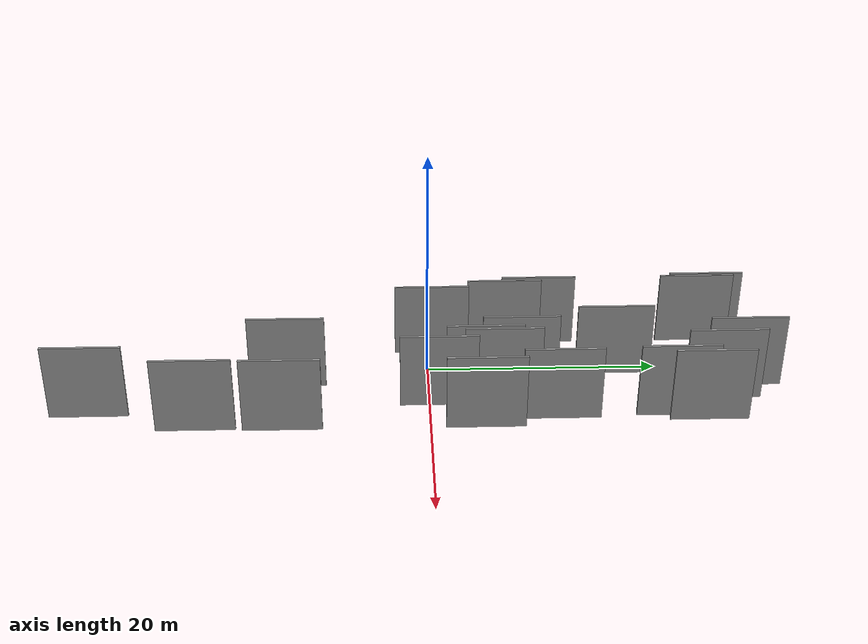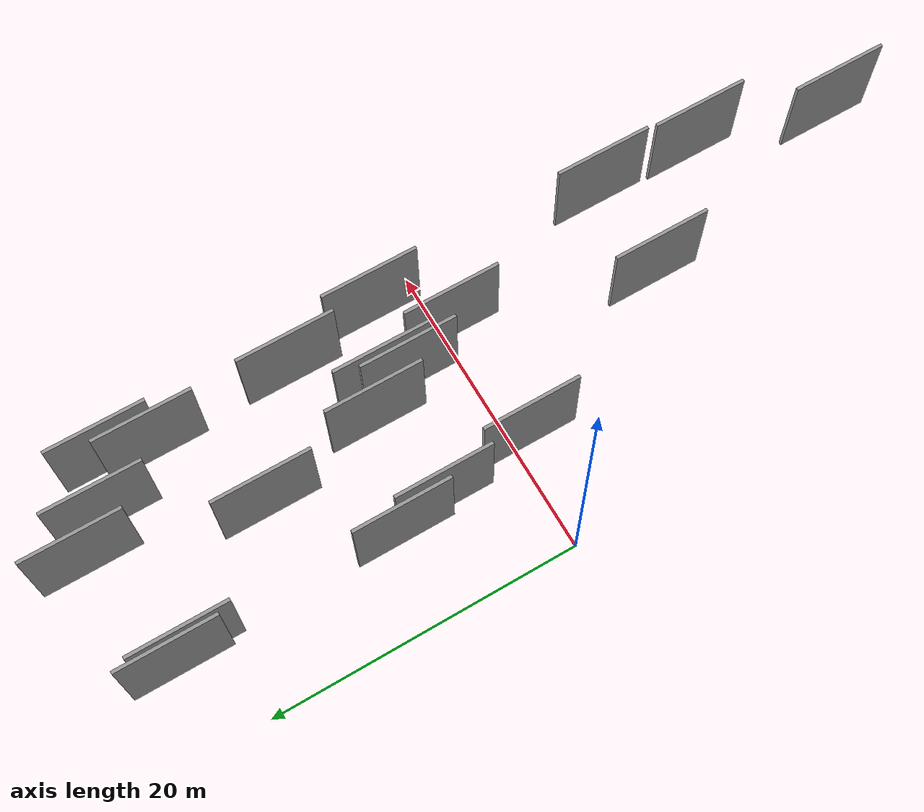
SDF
<sdf version="1.6">
 <world name="default">
  <scene>
   <sky><clouds><speed>12</speed></clouds></sky>
   <ambient>0.4 0.4 0.4 1</ambient>
   <background>0.7 0.7 0.7 1</background>
   <shadows>1</shadows>
  </scene>
  <gravity>0 0 -9.8066</gravity>
  <magnetic_field>6e-06 2.3e-05 -4.2e-05</magnetic_field>
  <physics default="0" name="default_physics" type="ode">
   <ode>
    <solver>
     <type>quick</type>
     <iters>10</iters>
     <sor>1.0</sor>
     <use_dynamic_moi_rescaling>0</use_dynamic_moi_rescaling>
    </solver>
    <constraints>
     <cfm>0</cfm>
     <erp>0.2</erp>
     <contact_max_correcting_vel>100</contact_max_correcting_vel>
     <contact_surface_layer>0.001</contact_surface_layer>
    </constraints>
   </ode>
   <max_step_size>0.004</max_step_size>
   <real_time_factor>1</real_time_factor>
   <real_time_update_rate>250</real_time_update_rate>
  </physics>
  <light name="sun" type="directional">
   <pose>0 0 10 0 0 0</pose>
   <diffuse>0.8 0.8 0.8 1</diffuse>
   <specular>0.2 0.2 0.2 1</specular>
   <attenuation>
    <range>1000</range>
    <constant>0.9</constant>
    <linear>0.01</linear>
    <quadratic>0.001</quadratic>
   </attenuation>
   <direction>-0.5 0.1 -0.9</direction>
  </light>
  <model name="grey_wall_1">
   <static>1</static>
   <pose>15.4635 9.6667 5.0 0.000000 0.000000 1.570796</pose>
   <link name="link">
    <pose>0 0 3.00 0 0 0</pose>
    <collision name="collision"><geometry><box><size>6.00 0.2 6.00</size></box></geometry></collision>
    <visual name="visual">
     <cast_shadows>0</cast_shadows>
     <geometry><box><size>6.00 0.2 6.00</size></box></geometry>
     <material>
      <script>
       <uri>model://grey_wall/materials/scripts</uri>
       <uri>model://grey_wall/materials/textures</uri>
       <name>vrc/grey_wall</name>
      </script>
     </material>
    </visual>
   </link>
  </model>
  <model name="grey_wall_2">
   <static>1</static>
   <pose>5.3082 0.1436 5.0 0.000000 0.000000 1.570796</pose>
   <link name="link">
    <pose>0 0 3.00 0 0 0</pose>
    <collision name="collision"><geometry><box><size>6.00 0.2 6.00</size></box></geometry></collision>
    <visual name="visual">
     <cast_shadows>0</cast_shadows>
     <geometry><box><size>6.00 0.2 6.00</size></box></geometry>
     <material>
      <script>
       <uri>model://grey_wall/materials/scripts</uri>
       <uri>model://grey_wall/materials/textures</uri>
       <name>vrc/grey_wall</name>
      </script>
     </material>
    </visual>
   </link>
  </model>
  <model name="grey_wall_3">
   <static>1</static>
   <pose>10.4455 6.9441 5.0 0.000000 0.000000 1.570796</pose>
   <link name="link">
    <pose>0 0 3.00 0 0 0</pose>
    <collision name="collision"><geometry><box><size>6.00 0.2 6.00</size></box></geometry></collision>
    <visual name="visual">
     <cast_shadows>0</cast_shadows>
     <geometry><box><size>6.00 0.2 6.00</size></box></geometry>
     <material>
      <script>
       <uri>model://grey_wall/materials/scripts</uri>
       <uri>model://grey_wall/materials/textures</uri>
       <name>vrc/grey_wall</name>
      </script>
     </material>
    </visual>
   </link>
  </model>
  <model name="grey_wall_4">
   <static>1</static>
   <pose>16.5040 3.8738 5.0 0.000000 0.000000 1.570796</pose>
   <link name="link">
    <pose>0 0 3.00 0 0 0</pose>
    <collision name="collision"><geometry><box><size>6.00 0.2 6.00</size></box></geometry></collision>
    <visual name="visual">
     <cast_shadows>0</cast_shadows>
     <geometry><box><size>6.00 0.2 6.00</size></box></geometry>
     <material>
      <script>
       <uri>model://grey_wall/materials/scripts</uri>
       <uri>model://grey_wall/materials/textures</uri>
       <name>vrc/grey_wall</name>
      </script>
     </material>
    </visual>
   </link>
  </model>
  <model name="grey_wall_5">
   <static>1</static>
   <pose>11.0874 24.4993 5.0 0.000000 0.000000 1.570796</pose>
   <link name="link">
    <pose>0 0 3.00 0 0 0</pose>
    <collision name="collision"><geometry><box><size>6.00 0.2 6.00</size></box></geometry></collision>
    <visual name="visual">
     <cast_shadows>0</cast_shadows>
     <geometry><box><size>6.00 0.2 6.00</size></box></geometry>
     <material>
      <script>
       <uri>model://grey_wall/materials/scripts</uri>
       <uri>model://grey_wall/materials/textures</uri>
       <name>vrc/grey_wall</name>
      </script>
     </material>
    </visual>
   </link>
  </model>
  <model name="grey_wall_6">
   <static>1</static>
   <pose>3.8618 8.9038 5.0 0.000000 0.000000 1.570796</pose>
   <link name="link">
    <pose>0 0 3.00 0 0 0</pose>
    <collision name="collision"><geometry><box><size>6.00 0.2 6.00</size></box></geometry></collision>
    <visual name="visual">
     <cast_shadows>0</cast_shadows>
     <geometry><box><size>6.00 0.2 6.00</size></box></geometry>
     <material>
      <script>
       <uri>model://grey_wall/materials/scripts</uri>
       <uri>model://grey_wall/materials/textures</uri>
       <name>vrc/grey_wall</name>
      </script>
     </material>
    </visual>
   </link>
  </model>
  <model name="grey_wall_7">
   <static>1</static>
   <pose>4.3916 6.0855 5.0 0.000000 0.000000 1.570796</pose>
   <link name="link">
    <pose>0 0 3.00 0 0 0</pose>
    <collision name="collision"><geometry><box><size>6.00 0.2 6.00</size></box></geometry></collision>
    <visual name="visual">
     <cast_shadows>0</cast_shadows>
     <geometry><box><size>6.00 0.2 6.00</size></box></geometry>
     <material>
      <script>
       <uri>model://grey_wall/materials/scripts</uri>
       <uri>model://grey_wall/materials/textures</uri>
       <name>vrc/grey_wall</name>
      </script>
     </material>
    </visual>
   </link>
  </model>
  <model name="grey_wall_8">
   <static>1</static>
   <pose>14.2609 -26.1903 5.0 0.000000 0.000000 1.570796</pose>
   <link name="link">
    <pose>0 0 3.00 0 0 0</pose>
    <collision name="collision"><geometry><box><size>6.00 0.2 6.00</size></box></geometry></collision>
    <visual name="visual">
     <cast_shadows>0</cast_shadows>
     <geometry><box><size>6.00 0.2 6.00</size></box></geometry>
     <material>
      <script>
       <uri>model://grey_wall/materials/scripts</uri>
       <uri>model://grey_wall/materials/textures</uri>
       <name>vrc/grey_wall</name>
      </script>
     </material>
    </visual>
   </link>
  </model>
  <model name="grey_wall_9">
   <static>1</static>
   <pose>10.3071 -11.3317 5.0 0.000000 0.000000 1.570796</pose>
   <link name="link">
    <pose>0 0 3.00 0 0 0</pose>
    <collision name="collision"><geometry><box><size>6.00 0.2 6.00</size></box></geometry></collision>
    <visual name="visual">
     <cast_shadows>0</cast_shadows>
     <geometry><box><size>6.00 0.2 6.00</size></box></geometry>
     <material>
      <script>
       <uri>model://grey_wall/materials/scripts</uri>
       <uri>model://grey_wall/materials/textures</uri>
       <name>vrc/grey_wall</name>
      </script>
     </material>
    </visual>
   </link>
  </model>
  <model name="grey_wall_10">
   <static>1</static>
   <pose>12.2491 5.4722 5.0 0.000000 0.000000 1.570796</pose>
   <link name="link">
    <pose>0 0 3.00 0 0 0</pose>
    <collision name="collision"><geometry><box><size>6.00 0.2 6.00</size></box></geometry></collision>
    <visual name="visual">
     <cast_shadows>0</cast_shadows>
     <geometry><box><size>6.00 0.2 6.00</size></box></geometry>
     <material>
      <script>
       <uri>model://grey_wall/materials/scripts</uri>
       <uri>model://grey_wall/materials/textures</uri>
       <name>vrc/grey_wall</name>
      </script>
     </material>
    </visual>
   </link>
  </model>
  <model name="grey_wall_11">
   <static>1</static>
   <pose>3.8617 21.9052 5.0 0.000000 0.000000 1.570796</pose>
   <link name="link">
    <pose>0 0 3.00 0 0 0</pose>
    <collision name="collision"><geometry><box><size>6.00 0.2 6.00</size></box></geometry></collision>
    <visual name="visual">
     <cast_shadows>0</cast_shadows>
     <geometry><box><size>6.00 0.2 6.00</size></box></geometry>
     <material>
      <script>
       <uri>model://grey_wall/materials/scripts</uri>
       <uri>model://grey_wall/materials/textures</uri>
       <name>vrc/grey_wall</name>
      </script>
     </material>
    </visual>
   </link>
  </model>
  <model name="grey_wall_12">
   <static>1</static>
   <pose>16.3467 -17.8709 5.0 0.000000 0.000000 1.570796</pose>
   <link name="link">
    <pose>0 0 3.00 0 0 0</pose>
    <collision name="collision"><geometry><box><size>6.00 0.2 6.00</size></box></geometry></collision>
    <visual name="visual">
     <cast_shadows>0</cast_shadows>
     <geometry><box><size>6.00 0.2 6.00</size></box></geometry>
     <material>
      <script>
       <uri>model://grey_wall/materials/scripts</uri>
       <uri>model://grey_wall/materials/textures</uri>
       <name>vrc/grey_wall</name>
      </script>
     </material>
    </visual>
   </link>
  </model>
  <model name="grey_wall_13">
   <static>1</static>
   <pose>8.9907 14.5030 5.0 0.000000 0.000000 1.570796</pose>
   <link name="link">
    <pose>0 0 3.00 0 0 0</pose>
    <collision name="collision"><geometry><box><size>6.00 0.2 6.00</size></box></geometry></collision>
    <visual name="visual">
     <cast_shadows>0</cast_shadows>
     <geometry><box><size>6.00 0.2 6.00</size></box></geometry>
     <material>
      <script>
       <uri>model://grey_wall/materials/scripts</uri>
       <uri>model://grey_wall/materials/textures</uri>
       <name>vrc/grey_wall</name>
      </script>
     </material>
    </visual>
   </link>
  </model>
  <model name="grey_wall_14">
   <static>1</static>
   <pose>15.9243 20.8385 5.0 0.000000 0.000000 1.570796</pose>
   <link name="link">
    <pose>0 0 3.00 0 0 0</pose>
    <collision name="collision"><geometry><box><size>6.00 0.2 6.00</size></box></geometry></collision>
    <visual name="visual">
     <cast_shadows>0</cast_shadows>
     <geometry><box><size>6.00 0.2 6.00</size></box></geometry>
     <material>
      <script>
       <uri>model://grey_wall/materials/scripts</uri>
       <uri>model://grey_wall/materials/textures</uri>
       <name>vrc/grey_wall</name>
      </script>
     </material>
    </visual>
   </link>
  </model>
  <model name="grey_wall_15">
   <static>1</static>
   <pose>16.4871 -11.3814 5.0 0.000000 0.000000 1.570796</pose>
   <link name="link">
    <pose>0 0 3.00 0 0 0</pose>
    <collision name="collision"><geometry><box><size>6.00 0.2 6.00</size></box></geometry></collision>
    <visual name="visual">
     <cast_shadows>0</cast_shadows>
     <geometry><box><size>6.00 0.2 6.00</size></box></geometry>
     <material>
      <script>
       <uri>model://grey_wall/materials/scripts</uri>
       <uri>model://grey_wall/materials/textures</uri>
       <name>vrc/grey_wall</name>
      </script>
     </material>
    </visual>
   </link>
  </model>
  <model name="grey_wall_16">
   <static>1</static>
   <pose>12.9405 22.4615 5.0 0.000000 0.000000 1.570796</pose>
   <link name="link">
    <pose>0 0 3.00 0 0 0</pose>
    <collision name="collision"><geometry><box><size>6.00 0.2 6.00</size></box></geometry></collision>
    <visual name="visual">
     <cast_shadows>0</cast_shadows>
     <geometry><box><size>6.00 0.2 6.00</size></box></geometry>
     <material>
      <script>
       <uri>model://grey_wall/materials/scripts</uri>
       <uri>model://grey_wall/materials/textures</uri>
       <name>vrc/grey_wall</name>
      </script>
     </material>
    </visual>
   </link>
  </model>
  <model name="grey_wall_17">
   <static>1</static>
   <pose>15.2388 18.4017 5.0 0.000000 0.000000 1.570796</pose>
   <link name="link">
    <pose>0 0 3.00 0 0 0</pose>
    <collision name="collision"><geometry><box><size>6.00 0.2 6.00</size></box></geometry></collision>
    <visual name="visual">
     <cast_shadows>0</cast_shadows>
     <geometry><box><size>6.00 0.2 6.00</size></box></geometry>
     <material>
      <script>
       <uri>model://grey_wall/materials/scripts</uri>
       <uri>model://grey_wall/materials/textures</uri>
       <name>vrc/grey_wall</name>
      </script>
     </material>
    </visual>
   </link>
  </model>
  <model name="grey_wall_18">
   <static>1</static>
   <pose>3.4929 22.7436 5.0 0.000000 0.000000 1.570796</pose>
   <link name="link">
    <pose>0 0 3.00 0 0 0</pose>
    <collision name="collision"><geometry><box><size>6.00 0.2 6.00</size></box></geometry></collision>
    <visual name="visual">
     <cast_shadows>0</cast_shadows>
     <geometry><box><size>6.00 0.2 6.00</size></box></geometry>
     <material>
      <script>
       <uri>model://grey_wall/materials/scripts</uri>
       <uri>model://grey_wall/materials/textures</uri>
       <name>vrc/grey_wall</name>
      </script>
     </material>
    </visual>
   </link>
  </model>
  <model name="grey_wall_19">
   <static>1</static>
   <pose>11.7911 4.0654 5.0 0.000000 0.000000 1.570796</pose>
   <link name="link">
    <pose>0 0 3.00 0 0 0</pose>
    <collision name="collision"><geometry><box><size>6.00 0.2 6.00</size></box></geometry></collision>
    <visual name="visual">
     <cast_shadows>0</cast_shadows>
     <geometry><box><size>6.00 0.2 6.00</size></box></geometry>
     <material>
      <script>
       <uri>model://grey_wall/materials/scripts</uri>
       <uri>model://grey_wall/materials/textures</uri>
       <name>vrc/grey_wall</name>
      </script>
     </material>
    </visual>
   </link>
  </model>
  <model name="grey_wall_20">
   <static>1</static>
   <pose>13.3346 0.4604 5.0 0.000000 0.000000 1.570796</pose>
   <link name="link">
    <pose>0 0 3.00 0 0 0</pose>
    <collision name="collision"><geometry><box><size>6.00 0.2 6.00</size></box></geometry></collision>
    <visual name="visual">
     <cast_shadows>0</cast_shadows>
     <geometry><box><size>6.00 0.2 6.00</size></box></geometry>
     <material>
      <script>
       <uri>model://grey_wall/materials/scripts</uri>
       <uri>model://grey_wall/materials/textures</uri>
       <name>vrc/grey_wall</name>
      </script>
     </material>
    </visual>
   </link>
  </model>
 </world>
</sdf>
